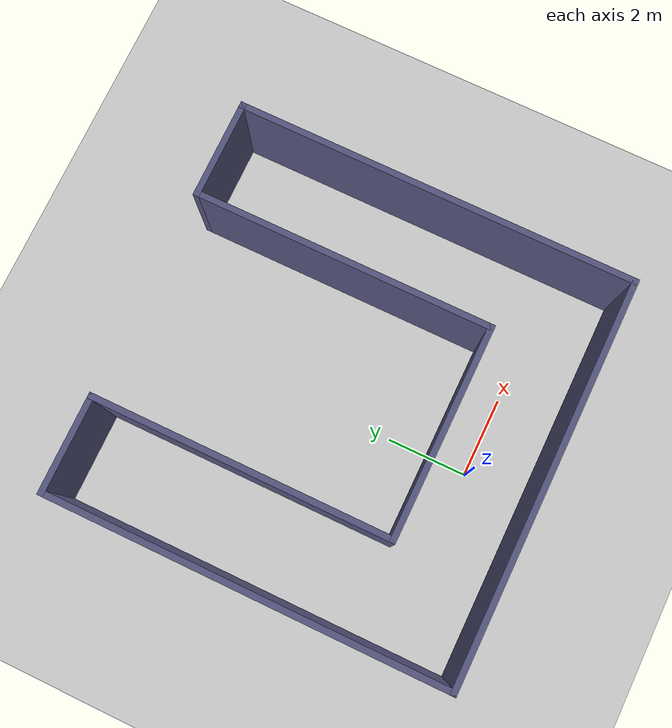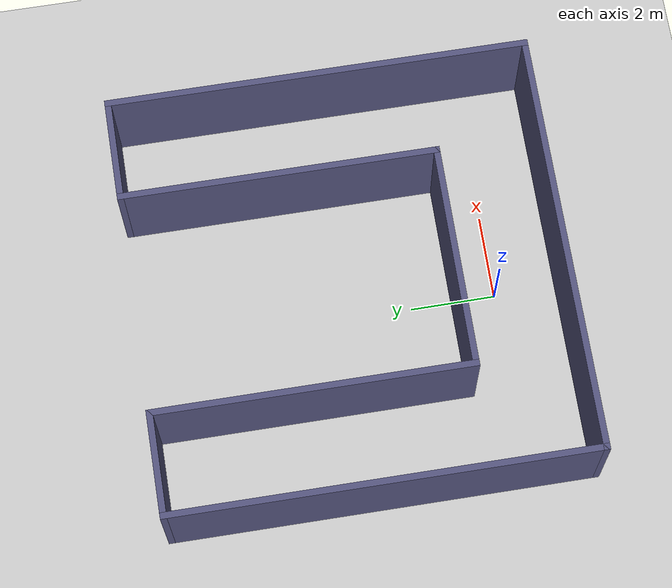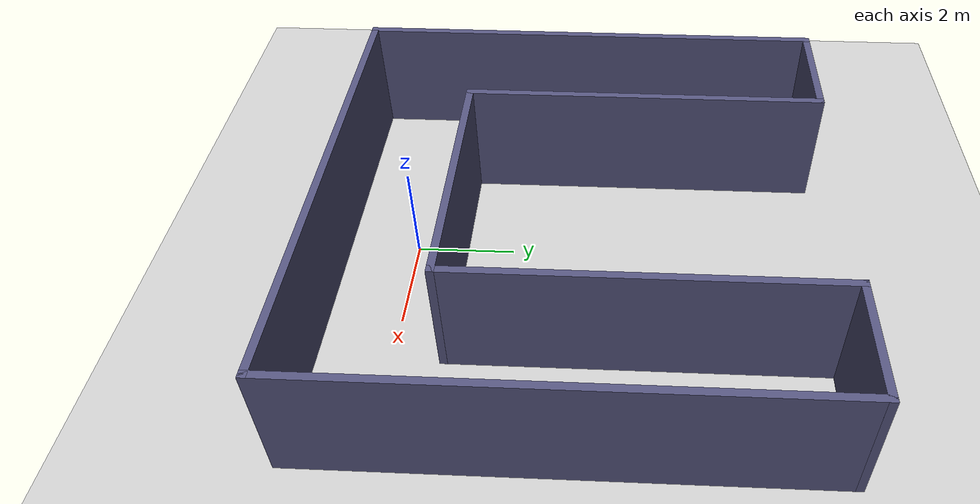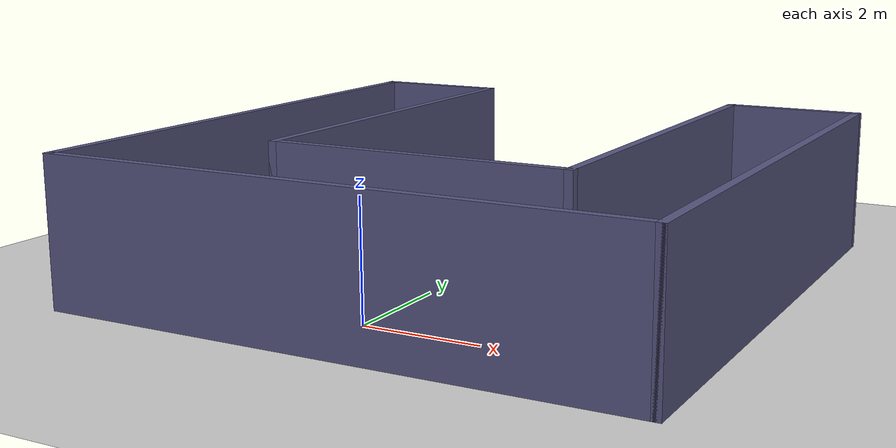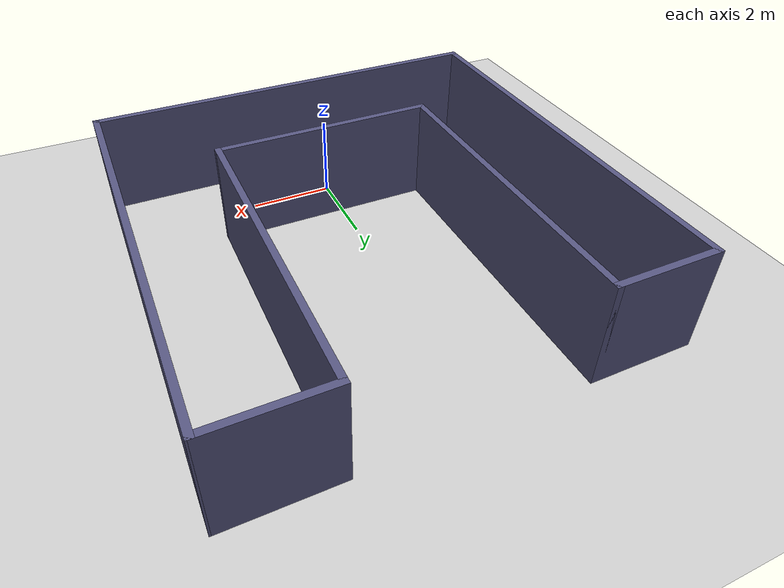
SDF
<sdf version="1.6">
 <world name="default">
  <light name="sun" type="directional">
   <pose>0 0 10 0 -0 0</pose>
   <diffuse>0.8 0.8 0.8 1</diffuse>
   <specular>0.2 0.2 0.2 1</specular>
   <attenuation>
    <range>1000</range>
    <constant>0.9</constant>
    <linear>0.01</linear>
    <quadratic>0.001</quadratic>
   </attenuation>
   <direction>-0.5 0.1 -0.9</direction>
  </light>
  <model name="ground_plane">
   <static>1</static>
   <link name="link">
    <collision name="collision">
     <geometry><plane><normal>0 0 1</normal><size>100 100</size></plane></geometry>
     <surface>
      <contact><collide_bitmask>65535</collide_bitmask></contact>
      <friction><ode><mu>100</mu><mu2>50</mu2></ode></friction>
     </surface>
    </collision>
    <visual name="visual">
     <cast_shadows>0</cast_shadows>
     <geometry><plane><normal>0 0 1</normal><size>100 100</size></plane></geometry>
     <material>
      <script><uri>file://media/materials/scripts/gazebo.material</uri><name>Gazebo/Grey</name></script>
     </material>
    </visual>
   </link>
  </model>
  <gravity>0 0 -9.8</gravity>
  <magnetic_field>6e-06 2.3e-05 -4.2e-05</magnetic_field>
  <atmosphere type="adiabatic"/>
  <physics name="default_physics" default="0" type="ode">
   <max_step_size>0.001</max_step_size>
   <real_time_factor>1</real_time_factor>
   <real_time_update_rate>1000</real_time_update_rate>
  </physics>
  <scene><ambient>0.4 0.4 0.4 1</ambient><background>0.7 0.7 0.7 1</background><shadows>1</shadows></scene>
  <spherical_coordinates>
   <surface_model>EARTH_WGS84</surface_model>
   <latitude_deg>0</latitude_deg>
   <longitude_deg>0</longitude_deg>
   <elevation>0</elevation>
   <heading_deg>0</heading_deg>
  </spherical_coordinates>
  <model name="myworld">
   <pose>0.341155 3.39918 0 0 -0 0</pose>
   <link name="Wall_0">
    <collision name="Wall_0_Collision">
     <geometry><box><size>10 0.15 2.5</size></box></geometry>
     <pose>0 0 1.25 0 -0 0</pose>
    </collision>
    <visual name="Wall_0_Visual">
     <pose>0 0 1.25 0 -0 0</pose>
     <geometry><box><size>10 0.15 2.5</size></box></geometry>
     <material>
      <script><uri>file://media/materials/scripts/gazebo.material</uri><name>Gazebo/Grey</name></script>
      <ambient>0.333333 0.333333 0.498039 1</ambient>
     </material>
     <meta><layer>0</layer></meta>
    </visual>
    <pose>-4.95144 -3e-06 0 0 0 -1.57084</pose>
   </link>
   <link name="Wall_12">
    <collision name="Wall_12_Collision">
     <geometry><box><size>10 0.15 2.5</size></box></geometry>
     <pose>0 0 1.25 0 -0 0</pose>
    </collision>
    <visual name="Wall_12_Visual">
     <pose>0 0 1.25 0 -0 0</pose>
     <geometry><box><size>10 0.15 2.5</size></box></geometry>
     <material>
      <script><uri>file://media/materials/scripts/gazebo.material</uri><name>Gazebo/Grey</name></script>
      <ambient>0.333333 0.333333 0.498039 1</ambient>
     </material>
     <meta><layer>0</layer></meta>
    </visual>
    <pose>4.95154 -0.0001 0 0 -0 1.5708</pose>
   </link>
   <link name="Wall_14">
    <collision name="Wall_14_Collision">
     <geometry><box><size>2.5 0.15 2.5</size></box></geometry>
     <pose>0 0 1.25 0 -0 0</pose>
    </collision>
    <visual name="Wall_14_Visual">
     <pose>0 0 1.25 0 -0 0</pose>
     <geometry><box><size>2.5 0.15 2.5</size></box></geometry>
     <material>
      <script><uri>file://media/materials/scripts/gazebo.material</uri><name>Gazebo/Grey</name></script>
      <ambient>0.333333 0.333333 0.498039 1</ambient>
     </material>
     <meta><layer>0</layer></meta>
    </visual>
    <pose>-3.77623 4.92509 0 0 -0 0</pose>
   </link>
   <link name="Wall_16">
    <collision name="Wall_16_Collision">
     <geometry><box><size>2.5 0.15 2.5</size></box></geometry>
     <pose>0 0 1.25 0 -0 0</pose>
    </collision>
    <visual name="Wall_16_Visual">
     <pose>0 0 1.25 0 -0 0</pose>
     <geometry><box><size>2.5 0.15 2.5</size></box></geometry>
     <material>
      <script><uri>file://media/materials/scripts/gazebo.material</uri><name>Gazebo/Grey</name></script>
      <ambient>0.333333 0.333333 0.498039 1</ambient>
     </material>
     <meta><layer>0</layer></meta>
    </visual>
    <pose>3.77665 4.925 0 0 -0 3.14151</pose>
   </link>
   <link name="Wall_18">
    <collision name="Wall_18_Collision">
     <geometry><box><size>7.5 0.15 2.5</size></box></geometry>
     <pose>0 0 1.25 0 -0 0</pose>
    </collision>
    <visual name="Wall_18_Visual">
     <pose>0 0 1.25 0 -0 0</pose>
     <geometry><box><size>7.5 0.15 2.5</size></box></geometry>
     <material>
      <script><uri>file://media/materials/scripts/gazebo.material</uri><name>Gazebo/Grey</name></script>
      <ambient>0.333333 0.333333 0.498039 1</ambient>
     </material>
     <meta><layer>0</layer></meta>
    </visual>
    <pose>-2.60123 1.25009 0 0 0 -1.5708</pose>
   </link>
   <link name="Wall_20">
    <collision name="Wall_20_Collision">
     <geometry><box><size>7.5 0.15 2.5</size></box></geometry>
     <pose>0 0 1.25 0 -0 0</pose>
    </collision>
    <visual name="Wall_20_Visual">
     <pose>0 0 1.25 0 -0 0</pose>
     <geometry><box><size>7.5 0.15 2.5</size></box></geometry>
     <material>
      <script><uri>file://media/materials/scripts/gazebo.material</uri><name>Gazebo/Grey</name></script>
      <ambient>0.333333 0.333333 0.498039 1</ambient>
     </material>
     <meta><layer>0</layer></meta>
    </visual>
    <pose>2.60177 1.25009 0 0 0 -1.5708</pose>
   </link>
   <link name="Wall_22">
    <collision name="Wall_22_Collision">
     <geometry><box><size>5.353 0.15 2.5</size></box></geometry>
     <pose>0 0 1.25 0 -0 0</pose>
    </collision>
    <visual name="Wall_22_Visual">
     <pose>0 0 1.25 0 -0 0</pose>
     <geometry><box><size>5.353 0.15 2.5</size></box></geometry>
     <material>
      <script><uri>file://media/materials/scripts/gazebo.material</uri><name>Gazebo/Grey</name></script>
      <ambient>0.333333 0.333333 0.498039 1</ambient>
     </material>
     <meta><layer>0</layer></meta>
    </visual>
    <pose>0.000268 -2.42491 0 0 -0 0</pose>
   </link>
   <link name="Wall_9">
    <collision name="Wall_9_Collision">
     <geometry><box><size>10.0532 0.15 2.5</size></box></geometry>
     <pose>0 0 1.25 0 -0 0</pose>
    </collision>
    <visual name="Wall_9_Visual">
     <pose>0 0 1.25 0 -0 0</pose>
     <geometry><box><size>10.0532 0.15 2.5</size></box></geometry>
     <material>
      <script><uri>file://media/materials/scripts/gazebo.material</uri><name>Gazebo/Grey</name></script>
      <ambient>0.333333 0.333333 0.498039 1</ambient>
     </material>
     <meta><layer>0</layer></meta>
    </visual>
    <pose>-5.8e-05 -4.9251 0 0 -0 0</pose>
   </link>
   <static>1</static>
  </model>
 </world>
</sdf>
